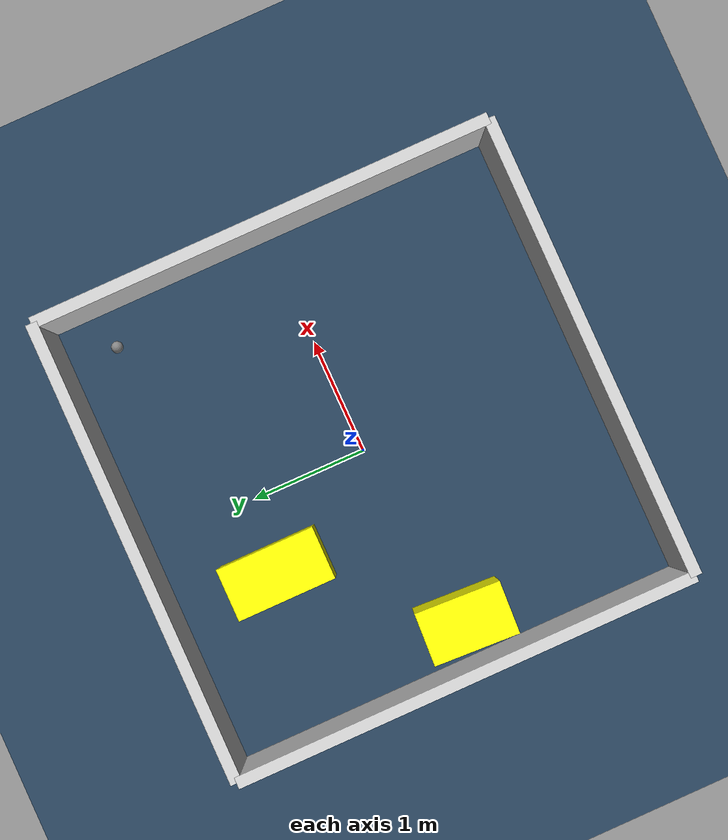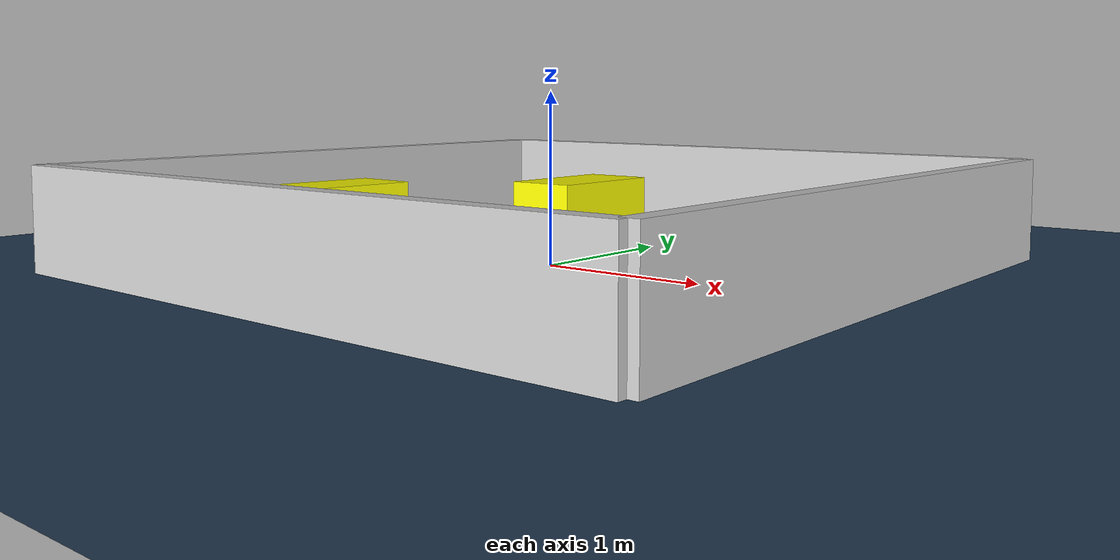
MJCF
<?xml version="1.0" ?>
<mujoco model="generated_environment">
  <option timestep="0.01" integrator="RK4" cone="elliptic"/>
  <default>
    <geom density="1"/>
  </default>
  <asset>
    <texture builtin="gradient" height="3072" rgb1="0.3 0.5 0.7" rgb2="0 0 0" type="skybox" width="512"/>
    <texture builtin="checker" height="300" mark="edge" markrgb="0.8 0.8 0.8" name="groundplane" rgb1="0.2 0.3 0.4" rgb2="0.1 0.2 0.3" type="2d" width="300"/>
    <material name="groundplane" reflectance="0.2" texrepeat="5 5" texture="groundplane" texuniform="true"/>
    <material name="robot" rgba="0.0 1.0 0.0 1"/>
  </asset>
  <worldbody>
    <light dir="0 0 -1" directional="true" pos="0 0 1.5"/>
    <geom condim="4" friction="1.0 0.005 0.001" material="groundplane" name="floor" size="0 0 0.05" type="plane"/>
    <body name="walls">
      <geom name="wall_1" condim="4" pos="-2.0 0.0 0.3" rgba="0.800000011920929 0.800000011920929 0.800000011920929 1.0" size="0.05 2.0 0.3" type="box"/>
      <geom name="wall_2" condim="4" pos="2.0 0.0 0.3" rgba="0.800000011920929 0.800000011920929 0.800000011920929 1.0" size="0.05 2.0 0.3" type="box"/>
      <geom name="wall_3" condim="4" pos="0.0 -2.0 0.3" rgba="0.800000011920929 0.800000011920929 0.800000011920929 1.0" size="2.0 0.05 0.3" type="box"/>
      <geom name="wall_4" condim="4" pos="0.0 2.0 0.3" rgba="0.800000011920929 0.800000011920929 0.800000011920929 1.0" size="2.0 0.05 0.3" type="box"/>
    </body>
    <body name="robot">
      <joint name="joint_x" type="slide" pos="0 0 0" axis="1 0 0"/>
      <joint name="joint_y" type="slide" pos="0 0 0" axis="0 1 0"/>
      <geom name="robot" type="sphere" pos="1.6154206514977347 1.5081020398388039 0.2" size="0.05" mass="5." friction="1.0 0.005 0.0001" condim="4"/>
      <site name="sensor_ball"/>
    </body>
    <body name="obstacle_1_movable">
      <geom name="obstacle_1_movable" condim="4" pos="-1.6297020371550035 -0.19008423165895993 0.2" euler="0 0 357.0749895097884" friction="1.0 0.005 0.001" rgba="1 1 0 1" size="0.22954368847477263 0.37163536759704247 0.2" type="box" mass="0.1"/>
      <joint type="free"/>
    </body>
    <body name="obstacle_2_movable">
      <geom name="obstacle_2_movable" condim="4" pos="-0.6278696190384712 1.0612199769899284 0.2" euler="0 0 0.016294394102240872" friction="1.0 0.005 0.001" rgba="1 1 0 1" size="0.22995261438424036 0.4284635515131056 0.2" type="box" mass="0.1"/>
      <joint type="free"/>
    </body>
  </worldbody>
  <actuator>
    <motor name="actuator_x" joint="joint_x" gear="1" ctrlrange="-1 1"/>
    <motor name="actuator_y" joint="joint_y" gear="1" ctrlrange="-1 1"/>
  </actuator>
</mujoco>
